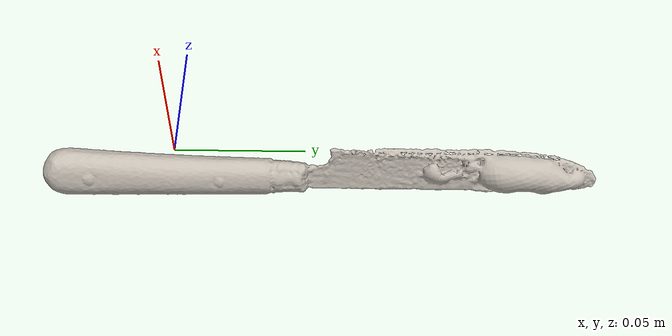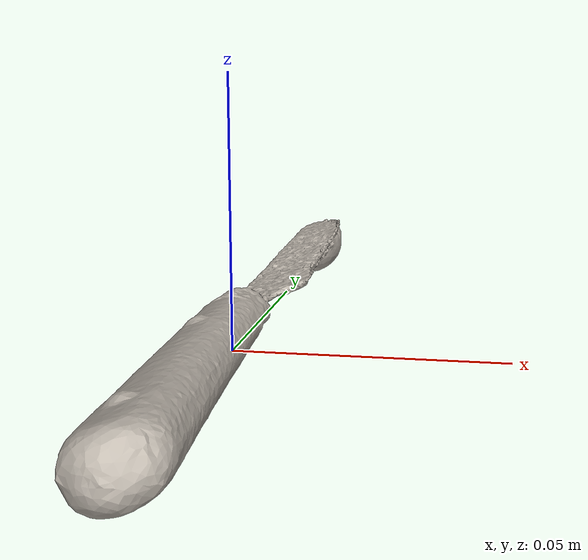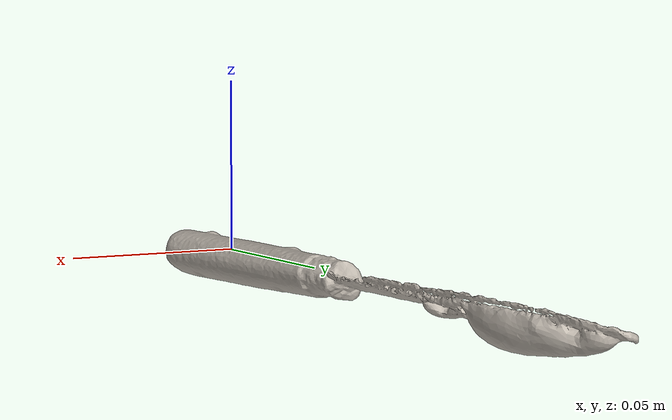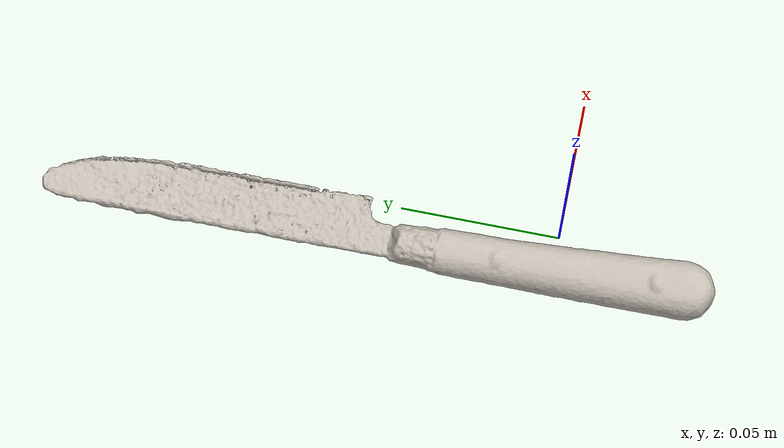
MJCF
<mujoco model="knife">
  <compiler angle="radian" />

  <asset>
    <mesh name="knife_visual_mesh" file="knife/textured.obj" />
    <mesh name="knife_collision_mesh_0" file="knife/textured_coacd_0.stl" />
    <mesh name="knife_collision_mesh_1" file="knife/textured_coacd_1.stl" />
    <texture name="knife_texture" type="2d" file="knife/texture_map.png" />
    <material name="knife_material" texture="knife_texture" />
  </asset>

  <worldbody>
    <body name="knife" pos="0 0 0" euler="0 0 0">
      <freejoint name="knife_joint" />
      <geom name="knife_visual_geom" type="mesh" mesh="knife_visual_mesh" material="knife_material" pos="-0.008445076147284661 0.029092631283473027 -0.005000385834128536" euler="0 0 0" contype="0" conaffinity="0" group="0" />
      <geom name="knife_collision_geom_0" type="mesh" mesh="knife_collision_mesh_0" pos="-0.008445076147284661 0.029092631283473027 -0.005000385834128536" euler="0 0 0" contype="1" conaffinity="1" group="3" />
      <geom name="knife_collision_geom_1" type="mesh" mesh="knife_collision_mesh_1" pos="-0.008445076147284661 0.029092631283473027 -0.005000385834128536" euler="0 0 0" contype="1" conaffinity="1" group="3" />
      <inertial pos="0 0 0" euler="0 0 0" mass="0.031" diaginertia="0.001 0.001 0.001" />
    </body>
  </worldbody>
</mujoco>
